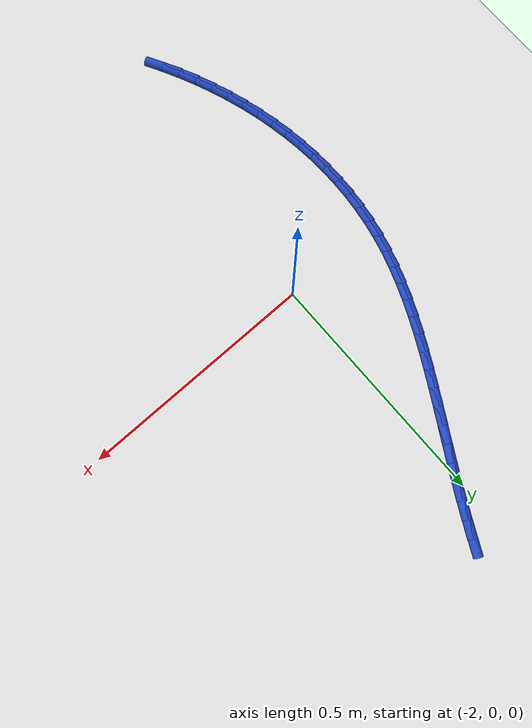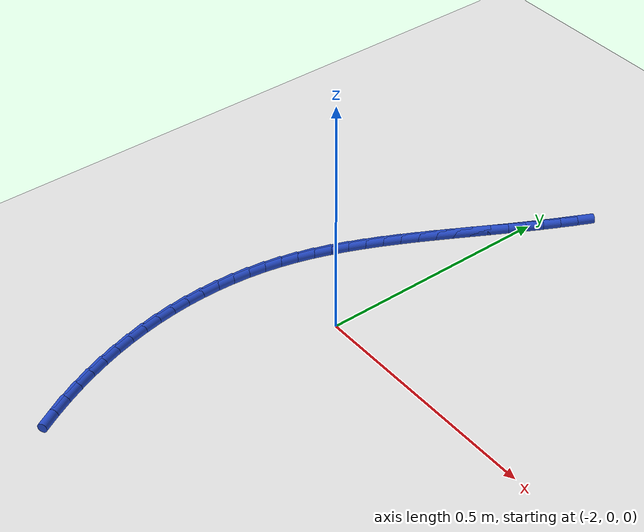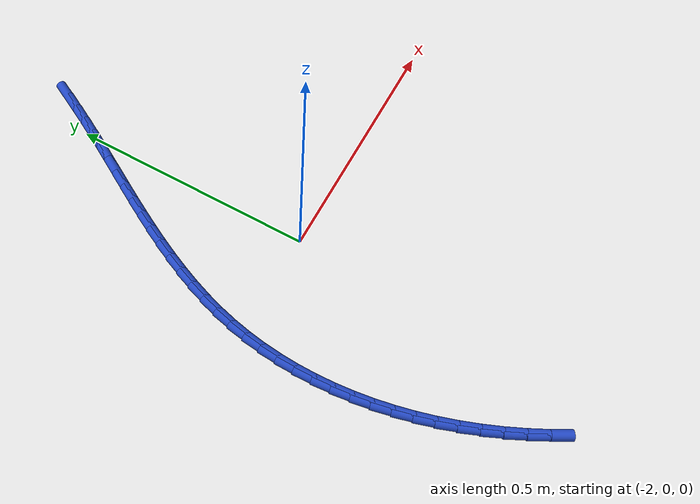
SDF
<sdf version="1.6">
 <world name="default">
  <model name="ground_plane">
   <static>1</static>
   <link name="link">
    <collision name="collision">
     <geometry><plane><normal>0 0 1</normal><size>100 100</size></plane></geometry>
     <surface><friction><ode><mu>100</mu><mu2>50</mu2></ode></friction></surface>
    </collision>
    <visual name="visual">
     <cast_shadows>0</cast_shadows>
     <geometry><plane><normal>0 0 1</normal><size>100 100</size></plane></geometry>
     <material>
      <script><uri>file://media/materials/scripts/gazebo.material</uri><name>Gazebo/WhiteGlow</name></script>
     </material>
    </visual>
   </link>
  </model>
  <model name="line">
   <link name="link_83">
    <pose>-1.947239130613692 0.5773337534002226 0.01 0 1.57 1.1080794860000844</pose>
    <collision name="collision">
     <geometry><cylinder><radius>0.01</radius><length>0.08</length></cylinder></geometry>
    </collision>
    <visual name="visual">
     <material>
      <script><name>Gazebo/Blue</name><uri>file://media/materials/scripts/gazebo.material</uri></script>
     </material>
     <geometry><cylinder><radius>0.01</radius><length>0.08</length></cylinder></geometry>
    </visual>
   </link>
   <link name="link_84">
    <pose>-1.9632544943204893 0.5452283540037209 0.01 0 1.57 1.0941068146139452</pose>
    <collision name="collision">
     <geometry><cylinder><radius>0.01</radius><length>0.08</length></cylinder></geometry>
    </collision>
    <visual name="visual">
     <material>
      <script><name>Gazebo/Blue</name><uri>file://media/materials/scripts/gazebo.material</uri></script>
     </material>
     <geometry><cylinder><radius>0.01</radius><length>0.08</length></cylinder></geometry>
    </visual>
   </link>
   <link name="link_85">
    <pose>-1.979761358630387 0.5132637249853155 0.01 0 1.57 1.0816770632721746</pose>
    <collision name="collision">
     <geometry><cylinder><radius>0.01</radius><length>0.08</length></cylinder></geometry>
    </collision>
    <visual name="visual">
     <material>
      <script><name>Gazebo/Blue</name><uri>file://media/materials/scripts/gazebo.material</uri></script>
     </material>
     <geometry><cylinder><radius>0.01</radius><length>0.08</length></cylinder></geometry>
    </visual>
   </link>
   <link name="link_86">
    <pose>-1.9967302734037513 0.48138269193209016 0.01 0 1.57 1.0708421668771828</pose>
    <collision name="collision">
     <geometry><cylinder><radius>0.01</radius><length>0.08</length></cylinder></geometry>
    </collision>
    <visual name="visual">
     <material>
      <script><name>Gazebo/Blue</name><uri>file://media/materials/scripts/gazebo.material</uri></script>
     </material>
     <geometry><cylinder><radius>0.01</radius><length>0.08</length></cylinder></geometry>
    </visual>
   </link>
   <link name="link_87">
    <pose>-2.0141304896015697 0.44952833931007646 0.01 0 1.57 1.062825005462003</pose>
    <collision name="collision">
     <geometry><cylinder><radius>0.01</radius><length>0.08</length></cylinder></geometry>
    </collision>
    <visual name="visual">
     <material>
      <script><name>Gazebo/Blue</name><uri>file://media/materials/scripts/gazebo.material</uri></script>
     </material>
     <geometry><cylinder><radius>0.01</radius><length>0.08</length></cylinder></geometry>
    </visual>
   </link>
   <link name="link_88">
    <pose>-2.0318742619209313 0.4176551113049794 0.01 0 1.57 1.0592315473551337</pose>
    <collision name="collision">
     <geometry><cylinder><radius>0.01</radius><length>0.08</length></cylinder></geometry>
    </collision>
    <visual name="visual">
     <material>
      <script><name>Gazebo/Blue</name><uri>file://media/materials/scripts/gazebo.material</uri></script>
     </material>
     <geometry><cylinder><radius>0.01</radius><length>0.08</length></cylinder></geometry>
    </visual>
   </link>
   <link name="link_89">
    <pose>-2.0497958073713054 0.3857330055124058 0.01 0 1.57 1.0601183062153463</pose>
    <collision name="collision">
     <geometry><cylinder><radius>0.01</radius><length>0.08</length></cylinder></geometry>
    </collision>
    <visual name="visual">
     <material>
      <script><name>Gazebo/Blue</name><uri>file://media/materials/scripts/gazebo.material</uri></script>
     </material>
     <geometry><cylinder><radius>0.01</radius><length>0.08</length></cylinder></geometry>
    </visual>
   </link>
   <link name="link_90">
    <pose>-2.067723705106854 0.35373314318855875 0.01 0 1.57 1.0654635001795771</pose>
    <collision name="collision">
     <geometry><cylinder><radius>0.01</radius><length>0.08</length></cylinder></geometry>
    </collision>
    <visual name="visual">
     <material>
      <script><name>Gazebo/Blue</name><uri>file://media/materials/scripts/gazebo.material</uri></script>
     </material>
     <geometry><cylinder><radius>0.01</radius><length>0.08</length></cylinder></geometry>
    </visual>
   </link>
   <link name="link_91">
    <pose>-2.085486534281741 0.32162664558964116 0.01 0 1.57 1.0752872493033045</pose>
    <collision name="collision">
     <geometry><cylinder><radius>0.01</radius><length>0.08</length></cylinder></geometry>
    </collision>
    <visual name="visual">
     <material>
      <script><name>Gazebo/Blue</name><uri>file://media/materials/scripts/gazebo.material</uri></script>
     </material>
     <geometry><cylinder><radius>0.01</radius><length>0.08</length></cylinder></geometry>
    </visual>
   </link>
   <link name="link_92">
    <pose>-2.102912874050127 0.28938463397185615 0.01 0 1.57 1.0896485715734192</pose>
    <collision name="collision">
     <geometry><cylinder><radius>0.01</radius><length>0.08</length></cylinder></geometry>
    </collision>
    <visual name="visual">
     <material>
      <script><name>Gazebo/Blue</name><uri>file://media/materials/scripts/gazebo.material</uri></script>
     </material>
     <geometry><cylinder><radius>0.01</radius><length>0.08</length></cylinder></geometry>
    </visual>
   </link>
   <link name="link_93">
    <pose>-2.1198313035661736 0.2569782295914066 0.01 0 1.57 1.108640383718255</pose>
    <collision name="collision">
     <geometry><cylinder><radius>0.01</radius><length>0.08</length></cylinder></geometry>
    </collision>
    <visual name="visual">
     <material>
      <script><name>Gazebo/Blue</name><uri>file://media/materials/scripts/gazebo.material</uri></script>
     </material>
     <geometry><cylinder><radius>0.01</radius><length>0.08</length></cylinder></geometry>
    </visual>
   </link>
   <link name="link_94">
    <pose>-2.1360704019840453 0.2243785537044957 0.01 0 1.57 1.132381948447741</pose>
    <collision name="collision">
     <geometry><cylinder><radius>0.01</radius><length>0.08</length></cylinder></geometry>
    </collision>
    <visual name="visual">
     <material>
      <script><name>Gazebo/Blue</name><uri>file://media/materials/scripts/gazebo.material</uri></script>
     </material>
     <geometry><cylinder><radius>0.01</radius><length>0.08</length></cylinder></geometry>
    </visual>
   </link>
   <link name="link_95">
    <pose>-2.151458748457901 0.1915567275673262 0.01 0 1.57 1.161007970980517</pose>
    <collision name="collision">
     <geometry><cylinder><radius>0.01</radius><length>0.08</length></cylinder></geometry>
    </collision>
    <visual name="visual">
     <material>
      <script><name>Gazebo/Blue</name><uri>file://media/materials/scripts/gazebo.material</uri></script>
     </material>
     <geometry><cylinder><radius>0.01</radius><length>0.08</length></cylinder></geometry>
    </visual>
   </link>
   <link name="link_96">
    <pose>-2.1658249221419053 0.15848387243610162 0.01 0 1.57 1.194653393438843</pose>
    <collision name="collision">
     <geometry><cylinder><radius>0.01</radius><length>0.08</length></cylinder></geometry>
    </collision>
    <visual name="visual">
     <material>
      <script><name>Gazebo/Blue</name><uri>file://media/materials/scripts/gazebo.material</uri></script>
     </material>
     <geometry><cylinder><radius>0.01</radius><length>0.08</length></cylinder></geometry>
    </visual>
   </link>
   <link name="link_97">
    <pose>-2.178997502190219 0.1251311095670242 0.01 0 1.57 1.2334329548847889</pose>
    <collision name="collision">
     <geometry><cylinder><radius>0.01</radius><length>0.08</length></cylinder></geometry>
    </collision>
    <visual name="visual">
     <material>
      <script><name>Gazebo/Blue</name><uri>file://media/materials/scripts/gazebo.material</uri></script>
     </material>
     <geometry><cylinder><radius>0.01</radius><length>0.08</length></cylinder></geometry>
    </visual>
   </link>
   <link name="link_98">
    <pose>-2.1908050677570055 0.09146956021629736 0.01 0 1.57 1.2774149176219776</pose>
    <collision name="collision">
     <geometry><cylinder><radius>0.01</radius><length>0.08</length></cylinder></geometry>
    </collision>
    <visual name="visual">
     <material>
      <script><name>Gazebo/Blue</name><uri>file://media/materials/scripts/gazebo.material</uri></script>
     </material>
     <geometry><cylinder><radius>0.01</radius><length>0.08</length></cylinder></geometry>
    </visual>
   </link>
   <link name="link_99">
    <pose>-2.2010761979964255 0.05747034564012402 0.01 0 1.57 1.326483984365248</pose>
    <collision name="collision">
     <geometry><cylinder><radius>0.01</radius><length>0.08</length></cylinder></geometry>
    </collision>
    <visual name="visual">
     <material>
      <script><name>Gazebo/Blue</name><uri>file://media/materials/scripts/gazebo.material</uri></script>
     </material>
     <geometry><cylinder><radius>0.01</radius><length>0.08</length></cylinder></geometry>
    </visual>
   </link>
   <link name="link_100">
    <pose>-2.209642982813626 0.02310590718452483 0.01 0 1.57 1.3778805569872763</pose>
    <collision name="collision">
     <geometry><cylinder><radius>0.01</radius><length>0.08</length></cylinder></geometry>
    </collision>
    <visual name="visual">
     <material>
      <script><name>Gazebo/Blue</name><uri>file://media/materials/scripts/gazebo.material</uri></script>
     </material>
     <geometry><cylinder><radius>0.01</radius><length>0.08</length></cylinder></geometry>
    </visual>
   </link>
   <link name="link_101">
    <pose>-2.216426128540128 -0.011617992830519749 0.01 0 1.57 1.4286935346272365</pose>
    <collision name="collision">
     <geometry><cylinder><radius>0.01</radius><length>0.08</length></cylinder></geometry>
    </collision>
    <visual name="visual">
     <material>
      <script><name>Gazebo/Blue</name><uri>file://media/materials/scripts/gazebo.material</uri></script>
     </material>
     <geometry><cylinder><radius>0.01</radius><length>0.08</length></cylinder></geometry>
    </visual>
   </link>
   <link name="link_102">
    <pose>-2.2214395635319844 -0.04666053934391834 0.01 0 1.57 1.4786962352131174</pose>
    <collision name="collision">
     <geometry><cylinder><radius>0.01</radius><length>0.08</length></cylinder></geometry>
    </collision>
    <visual name="visual">
     <material>
      <script><name>Gazebo/Blue</name><uri>file://media/materials/scripts/gazebo.material</uri></script>
     </material>
     <geometry><cylinder><radius>0.01</radius><length>0.08</length></cylinder></geometry>
    </visual>
   </link>
   <link name="link_103">
    <pose>-2.224701648757192 -0.081979250572582 0.01 0 1.57 1.527813156432191</pose>
    <collision name="collision">
     <geometry><cylinder><radius>0.01</radius><length>0.08</length></cylinder></geometry>
    </collision>
    <visual name="visual">
     <material>
      <script><name>Gazebo/Blue</name><uri>file://media/materials/scripts/gazebo.material</uri></script>
     </material>
     <geometry><cylinder><radius>0.01</radius><length>0.08</length></cylinder></geometry>
    </visual>
   </link>
   <link name="link_104">
    <pose>-2.2262307451837486 -0.1175316447334216 0.01 0 1.57 -1.5656057538744097</pose>
    <collision name="collision">
     <geometry><cylinder><radius>0.01</radius><length>0.08</length></cylinder></geometry>
    </collision>
    <visual name="visual">
     <material>
      <script><name>Gazebo/Blue</name><uri>file://media/materials/scripts/gazebo.material</uri></script>
     </material>
     <geometry><cylinder><radius>0.01</radius><length>0.08</length></cylinder></geometry>
    </visual>
   </link>
   <link name="link_105">
    <pose>-2.2260452137796505 -0.1532752400433483 0.01 0 1.57 -1.5184152838707885</pose>
    <collision name="collision">
     <geometry><cylinder><radius>0.01</radius><length>0.08</length></cylinder></geometry>
    </collision>
    <visual name="visual">
     <material>
      <script><name>Gazebo/Blue</name><uri>file://media/materials/scripts/gazebo.material</uri></script>
     </material>
     <geometry><cylinder><radius>0.01</radius><length>0.08</length></cylinder></geometry>
    </visual>
   </link>
   <link name="link_106">
    <pose>-2.2241634155128955 -0.18916755471927305 0.01 0 1.57 -1.4722321049271778</pose>
    <collision name="collision">
     <geometry><cylinder><radius>0.01</radius><length>0.08</length></cylinder></geometry>
    </collision>
    <visual name="visual">
     <material>
      <script><name>Gazebo/Blue</name><uri>file://media/materials/scripts/gazebo.material</uri></script>
     </material>
     <geometry><cylinder><radius>0.01</radius><length>0.08</length></cylinder></geometry>
    </visual>
   </link>
   <link name="link_107">
    <pose>-2.22060371135148 -0.22516610697810677 0.01 0 1.57 -1.4270656796545218</pose>
    <collision name="collision">
     <geometry><cylinder><radius>0.01</radius><length>0.08</length></cylinder></geometry>
    </collision>
    <visual name="visual">
     <material>
      <script><name>Gazebo/Blue</name><uri>file://media/materials/scripts/gazebo.material</uri></script>
     </material>
     <geometry><cylinder><radius>0.01</radius><length>0.08</length></cylinder></geometry>
    </visual>
   </link>
   <link name="link_108">
    <pose>-2.2153844622634025 -0.26122841503676053 0.01 0 1.57 -1.3829126148398179</pose>
    <collision name="collision">
     <geometry><cylinder><radius>0.01</radius><length>0.08</length></cylinder></geometry>
    </collision>
    <visual name="visual">
     <material>
      <script><name>Gazebo/Blue</name><uri>file://media/materials/scripts/gazebo.material</uri></script>
     </material>
     <geometry><cylinder><radius>0.01</radius><length>0.08</length></cylinder></geometry>
    </visual>
   </link>
   <link name="link_109">
    <pose>-2.20852402921666 -0.29731199711214534 0.01 0 1.57 -1.3397584338633872</pose>
    <collision name="collision">
     <geometry><cylinder><radius>0.01</radius><length>0.08</length></cylinder></geometry>
    </collision>
    <visual name="visual">
     <material>
      <script><name>Gazebo/Blue</name><uri>file://media/materials/scripts/gazebo.material</uri></script>
     </material>
     <geometry><cylinder><radius>0.01</radius><length>0.08</length></cylinder></geometry>
    </visual>
   </link>
   <link name="link_110">
    <pose>-2.2000407731792486 -0.3333743714211722 0.01 0 1.57 -1.297579337999119</pose>
    <collision name="collision">
     <geometry><cylinder><radius>0.01</radius><length>0.08</length></cylinder></geometry>
    </collision>
    <visual name="visual">
     <material>
      <script><name>Gazebo/Blue</name><uri>file://media/materials/scripts/gazebo.material</uri></script>
     </material>
     <geometry><cylinder><radius>0.01</radius><length>0.08</length></cylinder></geometry>
    </visual>
   </link>
   <link name="link_111">
    <pose>-2.189953055119166 -0.3693730561807521 0.01 0 1.57 -1.2563438930249275</pose>
    <collision name="collision">
     <geometry><cylinder><radius>0.01</radius><length>0.08</length></cylinder></geometry>
    </collision>
    <visual name="visual">
     <material>
      <script><name>Gazebo/Blue</name><uri>file://media/materials/scripts/gazebo.material</uri></script>
     </material>
     <geometry><cylinder><radius>0.01</radius><length>0.08</length></cylinder></geometry>
    </visual>
   </link>
   <link name="link_112">
    <pose>-2.1782792360044105 -0.40526556960779614 0.01 0 1.57 -1.2160145970272336</pose>
    <collision name="collision">
     <geometry><cylinder><radius>0.01</radius><length>0.08</length></cylinder></geometry>
    </collision>
    <visual name="visual">
     <material>
      <script><name>Gazebo/Blue</name><uri>file://media/materials/scripts/gazebo.material</uri></script>
     </material>
     <geometry><cylinder><radius>0.01</radius><length>0.08</length></cylinder></geometry>
    </visual>
   </link>
   <link name="link_113">
    <pose>-2.1650376768029775 -0.441009429919215 0.01 0 1.57 -1.1765493022864768</pose>
    <collision name="collision">
     <geometry><cylinder><radius>0.01</radius><length>0.08</length></cylinder></geometry>
    </collision>
    <visual name="visual">
     <material>
      <script><name>Gazebo/Blue</name><uri>file://media/materials/scripts/gazebo.material</uri></script>
     </material>
     <geometry><cylinder><radius>0.01</radius><length>0.08</length></cylinder></geometry>
    </visual>
   </link>
   <link name="link_114">
    <pose>-2.150246738482866 -0.4765621553319201 0.01 0 1.57 -1.1379024780579587</pose>
    <collision name="collision">
     <geometry><cylinder><radius>0.01</radius><length>0.08</length></cylinder></geometry>
    </collision>
    <visual name="visual">
     <material>
      <script><name>Gazebo/Blue</name><uri>file://media/materials/scripts/gazebo.material</uri></script>
     </material>
     <geometry><cylinder><radius>0.01</radius><length>0.08</length></cylinder></geometry>
    </visual>
   </link>
   <link name="link_115">
    <pose>-2.1339247820120724 -0.5118812640628222 0.01 0 1.57 -1.1000263118007658</pose>
    <collision name="collision">
     <geometry><cylinder><radius>0.01</radius><length>0.08</length></cylinder></geometry>
    </collision>
    <visual name="visual">
     <material>
      <script><name>Gazebo/Blue</name><uri>file://media/materials/scripts/gazebo.material</uri></script>
     </material>
     <geometry><cylinder><radius>0.01</radius><length>0.08</length></cylinder></geometry>
    </visual>
   </link>
   <link name="link_116">
    <pose>-2.116090168358594 -0.5469242743288315 0.01 0 1.57 -1.0628716541671797</pose>
    <collision name="collision">
     <geometry><cylinder><radius>0.01</radius><length>0.08</length></cylinder></geometry>
    </collision>
    <visual name="visual">
     <material>
      <script><name>Gazebo/Blue</name><uri>file://media/materials/scripts/gazebo.material</uri></script>
     </material>
     <geometry><cylinder><radius>0.01</radius><length>0.08</length></cylinder></geometry>
    </visual>
   </link>
  </model>
 </world>
</sdf>
